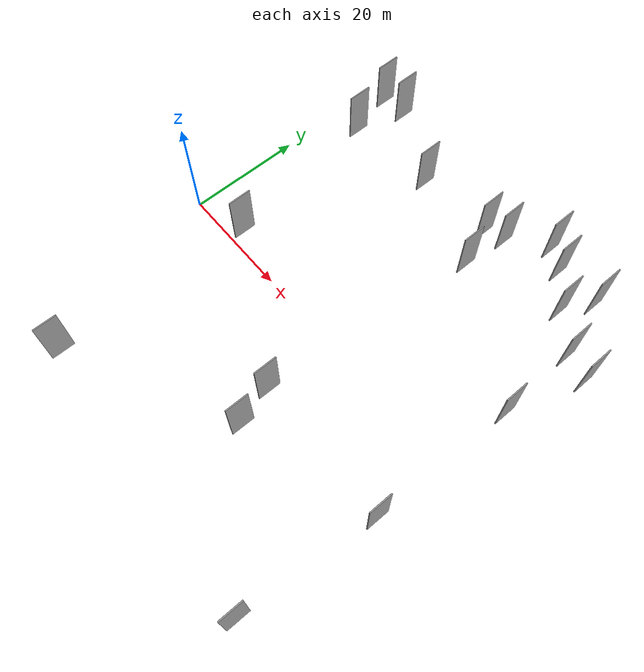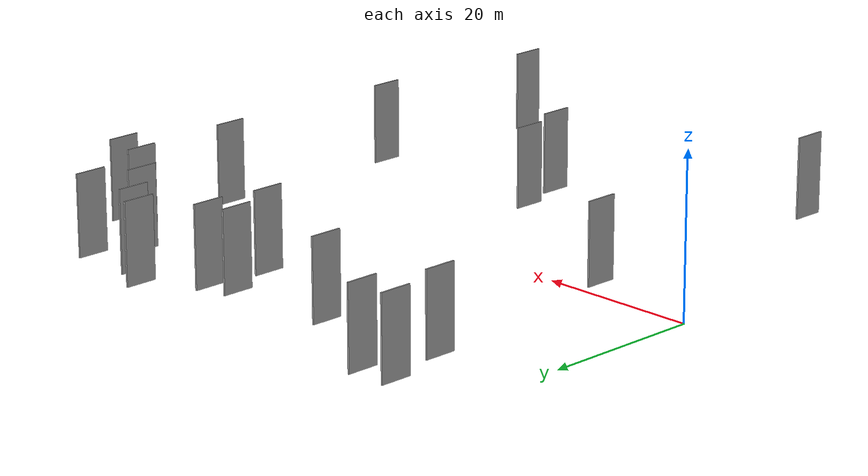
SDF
<sdf version="1.6">
 <world name="default">
  <scene>
   <sky><clouds><speed>12</speed></clouds></sky>
   <ambient>0.4 0.4 0.4 1</ambient>
   <background>0.7 0.7 0.7 1</background>
   <shadows>1</shadows>
  </scene>
  <gravity>0 0 -9.8066</gravity>
  <magnetic_field>6e-06 2.3e-05 -4.2e-05</magnetic_field>
  <physics default="0" name="default_physics" type="ode">
   <ode>
    <solver>
     <type>quick</type>
     <iters>10</iters>
     <sor>1.0</sor>
     <use_dynamic_moi_rescaling>0</use_dynamic_moi_rescaling>
    </solver>
    <constraints>
     <cfm>0</cfm>
     <erp>0.2</erp>
     <contact_max_correcting_vel>100</contact_max_correcting_vel>
     <contact_surface_layer>0.001</contact_surface_layer>
    </constraints>
   </ode>
   <max_step_size>0.004</max_step_size>
   <real_time_factor>1</real_time_factor>
   <real_time_update_rate>250</real_time_update_rate>
  </physics>
  <light name="sun" type="directional">
   <pose>0 0 10 0 0 0</pose>
   <diffuse>0.8 0.8 0.8 1</diffuse>
   <specular>0.2 0.2 0.2 1</specular>
   <attenuation>
    <range>1000</range>
    <constant>0.9</constant>
    <linear>0.01</linear>
    <quadratic>0.001</quadratic>
   </attenuation>
   <direction>-0.5 0.1 -0.9</direction>
  </light>
  <model name="grey_wall_1">
   <static>1</static>
   <pose>59.1306 -36.3086 2.5 0.000000 0.000000 1.570796</pose>
   <link name="link">
    <pose>0 0 5.00 0 0 0</pose>
    <collision name="collision"><geometry><box><size>4.00 0.2 10.00</size></box></geometry></collision>
    <visual name="visual">
     <cast_shadows>0</cast_shadows>
     <geometry><box><size>4.00 0.2 10.00</size></box></geometry>
     <material>
      <script>
       <uri>model://grey_wall/materials/scripts</uri>
       <uri>model://grey_wall/materials/textures</uri>
       <name>vrc/grey_wall</name>
      </script>
     </material>
    </visual>
   </link>
  </model>
  <model name="grey_wall_2">
   <static>1</static>
   <pose>61.1889 -13.1505 2.5 0.000000 0.000000 1.570796</pose>
   <link name="link">
    <pose>0 0 5.00 0 0 0</pose>
    <collision name="collision"><geometry><box><size>4.00 0.2 10.00</size></box></geometry></collision>
    <visual name="visual">
     <cast_shadows>0</cast_shadows>
     <geometry><box><size>4.00 0.2 10.00</size></box></geometry>
     <material>
      <script>
       <uri>model://grey_wall/materials/scripts</uri>
       <uri>model://grey_wall/materials/textures</uri>
       <name>vrc/grey_wall</name>
      </script>
     </material>
    </visual>
   </link>
  </model>
  <model name="grey_wall_3">
   <static>1</static>
   <pose>23.1870 31.6271 2.5 0.000000 0.000000 1.570796</pose>
   <link name="link">
    <pose>0 0 5.00 0 0 0</pose>
    <collision name="collision"><geometry><box><size>4.00 0.2 10.00</size></box></geometry></collision>
    <visual name="visual">
     <cast_shadows>0</cast_shadows>
     <geometry><box><size>4.00 0.2 10.00</size></box></geometry>
     <material>
      <script>
       <uri>model://grey_wall/materials/scripts</uri>
       <uri>model://grey_wall/materials/textures</uri>
       <name>vrc/grey_wall</name>
      </script>
     </material>
    </visual>
   </link>
  </model>
  <model name="grey_wall_4">
   <static>1</static>
   <pose>37.7998 -19.1569 2.5 0.000000 0.000000 1.570796</pose>
   <link name="link">
    <pose>0 0 5.00 0 0 0</pose>
    <collision name="collision"><geometry><box><size>4.00 0.2 10.00</size></box></geometry></collision>
    <visual name="visual">
     <cast_shadows>0</cast_shadows>
     <geometry><box><size>4.00 0.2 10.00</size></box></geometry>
     <material>
      <script>
       <uri>model://grey_wall/materials/scripts</uri>
       <uri>model://grey_wall/materials/textures</uri>
       <name>vrc/grey_wall</name>
      </script>
     </material>
    </visual>
   </link>
  </model>
  <model name="grey_wall_5">
   <static>1</static>
   <pose>66.0403 24.6191 2.5 0.000000 0.000000 1.570796</pose>
   <link name="link">
    <pose>0 0 5.00 0 0 0</pose>
    <collision name="collision"><geometry><box><size>4.00 0.2 10.00</size></box></geometry></collision>
    <visual name="visual">
     <cast_shadows>0</cast_shadows>
     <geometry><box><size>4.00 0.2 10.00</size></box></geometry>
     <material>
      <script>
       <uri>model://grey_wall/materials/scripts</uri>
       <uri>model://grey_wall/materials/textures</uri>
       <name>vrc/grey_wall</name>
      </script>
     </material>
    </visual>
   </link>
  </model>
  <model name="grey_wall_6">
   <static>1</static>
   <pose>9.7675 38.8723 2.5 0.000000 0.000000 1.570796</pose>
   <link name="link">
    <pose>0 0 5.00 0 0 0</pose>
    <collision name="collision"><geometry><box><size>4.00 0.2 10.00</size></box></geometry></collision>
    <visual name="visual">
     <cast_shadows>0</cast_shadows>
     <geometry><box><size>4.00 0.2 10.00</size></box></geometry>
     <material>
      <script>
       <uri>model://grey_wall/materials/scripts</uri>
       <uri>model://grey_wall/materials/textures</uri>
       <name>vrc/grey_wall</name>
      </script>
     </material>
    </visual>
   </link>
  </model>
  <model name="grey_wall_7">
   <static>1</static>
   <pose>10.7624 1.9095 2.5 0.000000 0.000000 1.570796</pose>
   <link name="link">
    <pose>0 0 5.00 0 0 0</pose>
    <collision name="collision"><geometry><box><size>4.00 0.2 10.00</size></box></geometry></collision>
    <visual name="visual">
     <cast_shadows>0</cast_shadows>
     <geometry><box><size>4.00 0.2 10.00</size></box></geometry>
     <material>
      <script>
       <uri>model://grey_wall/materials/scripts</uri>
       <uri>model://grey_wall/materials/textures</uri>
       <name>vrc/grey_wall</name>
      </script>
     </material>
    </visual>
   </link>
  </model>
  <model name="grey_wall_8">
   <static>1</static>
   <pose>9.9175 -33.1087 2.5 0.000000 0.000000 1.570796</pose>
   <link name="link">
    <pose>0 0 5.00 0 0 0</pose>
    <collision name="collision"><geometry><box><size>4.00 0.2 10.00</size></box></geometry></collision>
    <visual name="visual">
     <cast_shadows>0</cast_shadows>
     <geometry><box><size>4.00 0.2 10.00</size></box></geometry>
     <material>
      <script>
       <uri>model://grey_wall/materials/scripts</uri>
       <uri>model://grey_wall/materials/textures</uri>
       <name>vrc/grey_wall</name>
      </script>
     </material>
    </visual>
   </link>
  </model>
  <model name="grey_wall_9">
   <static>1</static>
   <pose>40.3556 33.4647 2.5 0.000000 0.000000 1.570796</pose>
   <link name="link">
    <pose>0 0 5.00 0 0 0</pose>
    <collision name="collision"><geometry><box><size>4.00 0.2 10.00</size></box></geometry></collision>
    <visual name="visual">
     <cast_shadows>0</cast_shadows>
     <geometry><box><size>4.00 0.2 10.00</size></box></geometry>
     <material>
      <script>
       <uri>model://grey_wall/materials/scripts</uri>
       <uri>model://grey_wall/materials/textures</uri>
       <name>vrc/grey_wall</name>
      </script>
     </material>
    </visual>
   </link>
  </model>
  <model name="grey_wall_10">
   <static>1</static>
   <pose>7.0994 30.3611 2.5 0.000000 0.000000 1.570796</pose>
   <link name="link">
    <pose>0 0 5.00 0 0 0</pose>
    <collision name="collision"><geometry><box><size>4.00 0.2 10.00</size></box></geometry></collision>
    <visual name="visual">
     <cast_shadows>0</cast_shadows>
     <geometry><box><size>4.00 0.2 10.00</size></box></geometry>
     <material>
      <script>
       <uri>model://grey_wall/materials/scripts</uri>
       <uri>model://grey_wall/materials/textures</uri>
       <name>vrc/grey_wall</name>
      </script>
     </material>
    </visual>
   </link>
  </model>
  <model name="grey_wall_11">
   <static>1</static>
   <pose>35.9302 -12.6870 2.5 0.000000 0.000000 1.570796</pose>
   <link name="link">
    <pose>0 0 5.00 0 0 0</pose>
    <collision name="collision"><geometry><box><size>4.00 0.2 10.00</size></box></geometry></collision>
    <visual name="visual">
     <cast_shadows>0</cast_shadows>
     <geometry><box><size>4.00 0.2 10.00</size></box></geometry>
     <material>
      <script>
       <uri>model://grey_wall/materials/scripts</uri>
       <uri>model://grey_wall/materials/textures</uri>
       <name>vrc/grey_wall</name>
      </script>
     </material>
    </visual>
   </link>
  </model>
  <model name="grey_wall_12">
   <static>1</static>
   <pose>58.1545 35.7373 2.5 0.000000 0.000000 1.570796</pose>
   <link name="link">
    <pose>0 0 5.00 0 0 0</pose>
    <collision name="collision"><geometry><box><size>4.00 0.2 10.00</size></box></geometry></collision>
    <visual name="visual">
     <cast_shadows>0</cast_shadows>
     <geometry><box><size>4.00 0.2 10.00</size></box></geometry>
     <material>
      <script>
       <uri>model://grey_wall/materials/scripts</uri>
       <uri>model://grey_wall/materials/textures</uri>
       <name>vrc/grey_wall</name>
      </script>
     </material>
    </visual>
   </link>
  </model>
  <model name="grey_wall_13">
   <static>1</static>
   <pose>46.5181 38.2249 2.5 0.000000 0.000000 1.570796</pose>
   <link name="link">
    <pose>0 0 5.00 0 0 0</pose>
    <collision name="collision"><geometry><box><size>4.00 0.2 10.00</size></box></geometry></collision>
    <visual name="visual">
     <cast_shadows>0</cast_shadows>
     <geometry><box><size>4.00 0.2 10.00</size></box></geometry>
     <material>
      <script>
       <uri>model://grey_wall/materials/scripts</uri>
       <uri>model://grey_wall/materials/textures</uri>
       <name>vrc/grey_wall</name>
      </script>
     </material>
    </visual>
   </link>
  </model>
  <model name="grey_wall_14">
   <static>1</static>
   <pose>36.8862 32.3647 2.5 0.000000 0.000000 1.570796</pose>
   <link name="link">
    <pose>0 0 5.00 0 0 0</pose>
    <collision name="collision"><geometry><box><size>4.00 0.2 10.00</size></box></geometry></collision>
    <visual name="visual">
     <cast_shadows>0</cast_shadows>
     <geometry><box><size>4.00 0.2 10.00</size></box></geometry>
     <material>
      <script>
       <uri>model://grey_wall/materials/scripts</uri>
       <uri>model://grey_wall/materials/textures</uri>
       <name>vrc/grey_wall</name>
      </script>
     </material>
    </visual>
   </link>
  </model>
  <model name="grey_wall_15">
   <static>1</static>
   <pose>39.4864 25.5431 2.5 0.000000 0.000000 1.570796</pose>
   <link name="link">
    <pose>0 0 5.00 0 0 0</pose>
    <collision name="collision"><geometry><box><size>4.00 0.2 10.00</size></box></geometry></collision>
    <visual name="visual">
     <cast_shadows>0</cast_shadows>
     <geometry><box><size>4.00 0.2 10.00</size></box></geometry>
     <material>
      <script>
       <uri>model://grey_wall/materials/scripts</uri>
       <uri>model://grey_wall/materials/textures</uri>
       <name>vrc/grey_wall</name>
      </script>
     </material>
    </visual>
   </link>
  </model>
  <model name="grey_wall_16">
   <static>1</static>
   <pose>61.4227 25.6950 2.5 0.000000 0.000000 1.570796</pose>
   <link name="link">
    <pose>0 0 5.00 0 0 0</pose>
    <collision name="collision"><geometry><box><size>4.00 0.2 10.00</size></box></geometry></collision>
    <visual name="visual">
     <cast_shadows>0</cast_shadows>
     <geometry><box><size>4.00 0.2 10.00</size></box></geometry>
     <material>
      <script>
       <uri>model://grey_wall/materials/scripts</uri>
       <uri>model://grey_wall/materials/textures</uri>
       <name>vrc/grey_wall</name>
      </script>
     </material>
    </visual>
   </link>
  </model>
  <model name="grey_wall_17">
   <static>1</static>
   <pose>55.3042 30.6574 2.5 0.000000 0.000000 1.570796</pose>
   <link name="link">
    <pose>0 0 5.00 0 0 0</pose>
    <collision name="collision"><geometry><box><size>4.00 0.2 10.00</size></box></geometry></collision>
    <visual name="visual">
     <cast_shadows>0</cast_shadows>
     <geometry><box><size>4.00 0.2 10.00</size></box></geometry>
     <material>
      <script>
       <uri>model://grey_wall/materials/scripts</uri>
       <uri>model://grey_wall/materials/textures</uri>
       <name>vrc/grey_wall</name>
      </script>
     </material>
    </visual>
   </link>
  </model>
  <model name="grey_wall_18">
   <static>1</static>
   <pose>5.1152 38.5704 2.5 0.000000 0.000000 1.570796</pose>
   <link name="link">
    <pose>0 0 5.00 0 0 0</pose>
    <collision name="collision"><geometry><box><size>4.00 0.2 10.00</size></box></geometry></collision>
    <visual name="visual">
     <cast_shadows>0</cast_shadows>
     <geometry><box><size>4.00 0.2 10.00</size></box></geometry>
     <material>
      <script>
       <uri>model://grey_wall/materials/scripts</uri>
       <uri>model://grey_wall/materials/textures</uri>
       <name>vrc/grey_wall</name>
      </script>
     </material>
    </visual>
   </link>
  </model>
  <model name="grey_wall_19">
   <static>1</static>
   <pose>61.8454 11.8221 2.5 0.000000 0.000000 1.570796</pose>
   <link name="link">
    <pose>0 0 5.00 0 0 0</pose>
    <collision name="collision"><geometry><box><size>4.00 0.2 10.00</size></box></geometry></collision>
    <visual name="visual">
     <cast_shadows>0</cast_shadows>
     <geometry><box><size>4.00 0.2 10.00</size></box></geometry>
     <material>
      <script>
       <uri>model://grey_wall/materials/scripts</uri>
       <uri>model://grey_wall/materials/textures</uri>
       <name>vrc/grey_wall</name>
      </script>
     </material>
    </visual>
   </link>
  </model>
  <model name="grey_wall_20">
   <static>1</static>
   <pose>50.3360 35.8996 2.5 0.000000 0.000000 1.570796</pose>
   <link name="link">
    <pose>0 0 5.00 0 0 0</pose>
    <collision name="collision"><geometry><box><size>4.00 0.2 10.00</size></box></geometry></collision>
    <visual name="visual">
     <cast_shadows>0</cast_shadows>
     <geometry><box><size>4.00 0.2 10.00</size></box></geometry>
     <material>
      <script>
       <uri>model://grey_wall/materials/scripts</uri>
       <uri>model://grey_wall/materials/textures</uri>
       <name>vrc/grey_wall</name>
      </script>
     </material>
    </visual>
   </link>
  </model>
 </world>
</sdf>
